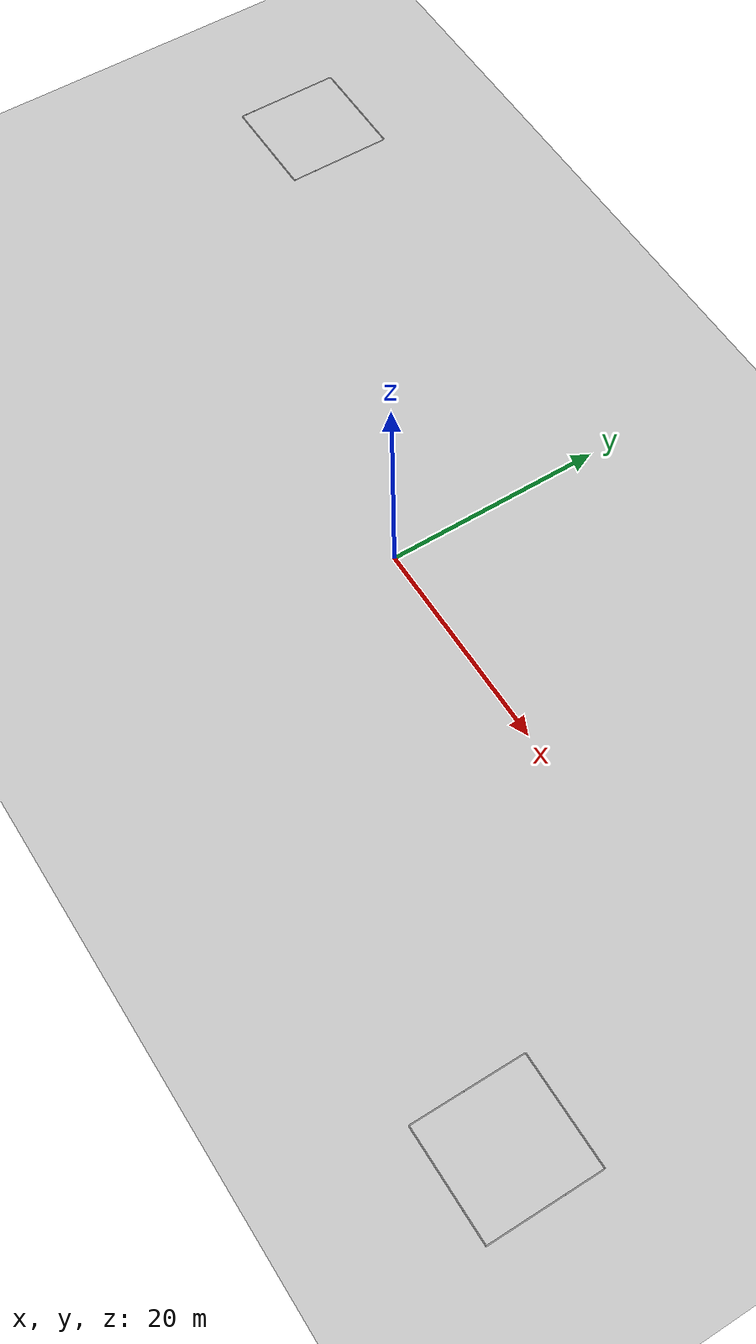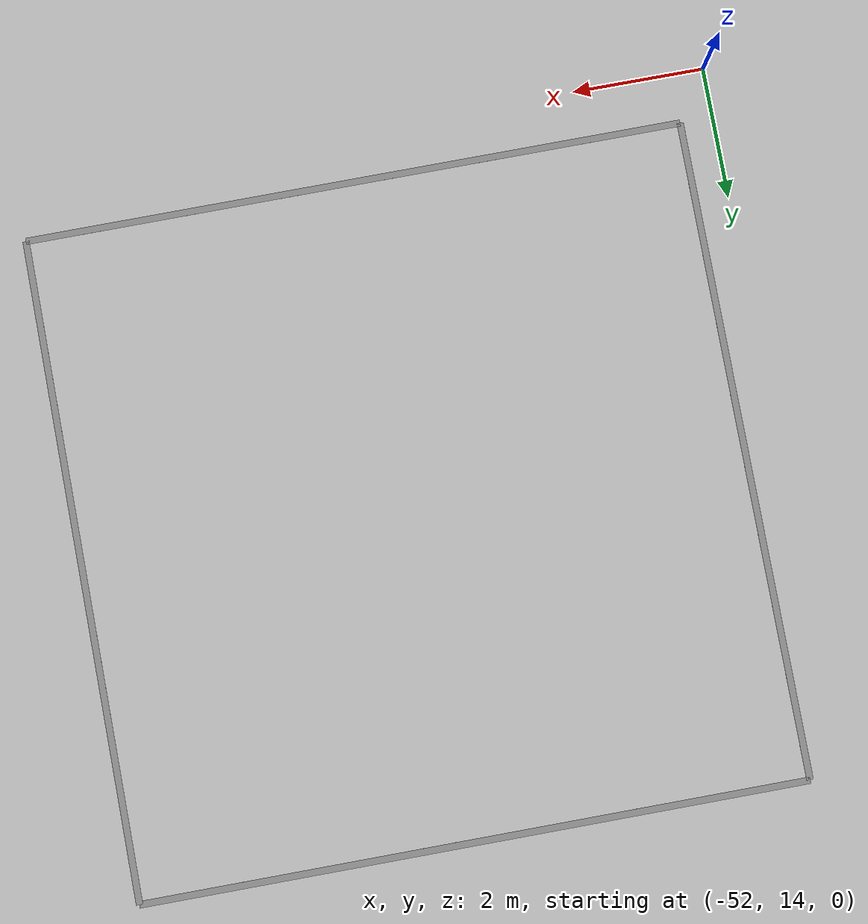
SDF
<sdf version="1.6">
 <world name="default">
  <light name="sun" type="directional">
   <pose>0 0 10 0 -0 0</pose>
   <diffuse>0.8 0.8 0.8 1</diffuse>
   <specular>0.1 0.1 0.1 1</specular>
   <attenuation>
    <range>1000</range>
    <constant>0.9</constant>
    <linear>0.01</linear>
    <quadratic>0.001</quadratic>
   </attenuation>
   <direction>-0.5 0.5 -1</direction>
  </light>
  <model name="ground_plane">
   <static>1</static>
   <link name="link">
    <collision name="collision">
     <geometry><plane><normal>0 0 1</normal><size>107.0 53.5</size></plane></geometry>
     <surface><friction><ode><mu>100</mu><mu2>50</mu2></ode></friction></surface>
    </collision>
    <visual name="visual">
     <cast_shadows>0</cast_shadows>
     <geometry><plane><normal>0 0 1</normal><size>107.0 53.5</size></plane></geometry>
     <material>
      <script>
       <uri>/home/savio/Documents/cmsvt_mbzirc/src/mbzirc_gazebo/worlds/materials/scripts</uri>
       <uri>/home/savio/Documents/cmsvt_mbzirc/src/mbzirc_gazebo/worlds/materials/textures</uri>
       <name>KentlandFarmGround/Image</name>
      </script>
     </material>
    </visual>
   </link>
  </model>
  <model name="start_area">
   <model name="designation_area">
    <link name="link_0">
     <pose>0 -5 0 0 0 0</pose>
     <inertial>
      <mass>1</mass>
      <inertia>
       <ixx>0.166667</ixx>
       <ixy>0</ixy>
       <ixz>0</ixz>
       <iyy>0.166667</iyy>
       <iyz>0</iyz>
       <izz>0.166667</izz>
      </inertia>
     </inertial>
     <visual name="ModelPreview_0::link_0::visual_1">
      <geometry><box><size>10 0.1 0.001</size></box></geometry>
      <material>
       <lighting>1</lighting>
       <script><uri>file://media/materials/scripts/gazebo.material</uri><name>Gazebo/Grey</name></script>
       <ambient>1 1 1 1</ambient>
       <diffuse>1 1 1 1</diffuse>
       <specular>0.01 0.01 0.01 1</specular>
       <emissive>0 0 0 1</emissive>
       <shader type="vertex"><normal_map>__default__</normal_map></shader>
      </material>
     </visual>
     <visual name="visual">
      <geometry><box><size>10 0.1 0.001</size></box></geometry>
      <material>
       <lighting>1</lighting>
       <script><uri>file://media/materials/scripts/gazebo.material</uri><name>Gazebo/Grey</name></script>
       <ambient>1 1 1 1</ambient>
       <diffuse>1 1 1 1</diffuse>
       <specular>0.01 0.01 0.01 1</specular>
       <emissive>0 0 0 1</emissive>
       <shader type="vertex"><normal_map>__default__</normal_map></shader>
      </material>
     </visual>
     <collision name="collision">
      <geometry><box><size>10 0.1 0.001</size></box></geometry>
      <surface>
       <friction>
        <ode><mu>1</mu><mu2>1</mu2><fdir1>0 0 0</fdir1><slip1>0</slip1><slip2>0</slip2></ode>
        <torsional>
         <coefficient>1</coefficient>
         <patch_radius>0</patch_radius>
         <surface_radius>0</surface_radius>
         <use_patch_radius>1</use_patch_radius>
         <ode><slip>0</slip></ode>
        </torsional>
       </friction>
       <bounce><restitution_coefficient>0</restitution_coefficient><threshold>1e+06</threshold></bounce>
       <contact>
        <collide_without_contact>0</collide_without_contact>
        <collide_without_contact_bitmask>1</collide_without_contact_bitmask>
        <collide_bitmask>1</collide_bitmask>
        <ode>
         <soft_cfm>0</soft_cfm>
         <soft_erp>0.2</soft_erp>
         <kp>1e+13</kp>
         <kd>1</kd>
         <max_vel>0.01</max_vel>
         <min_depth>0</min_depth>
        </ode>
        <bullet>
         <split_impulse>1</split_impulse>
         <split_impulse_penetration_threshold>-0.01</split_impulse_penetration_threshold>
         <soft_cfm>0</soft_cfm>
         <soft_erp>0.2</soft_erp>
         <kp>1e+13</kp>
         <kd>1</kd>
        </bullet>
       </contact>
      </surface>
     </collision>
    </link>
    <link name="link_0_clone">
     <pose>0 5 0 0 0 0</pose>
     <inertial>
      <mass>1</mass>
      <inertia>
       <ixx>0.166667</ixx>
       <ixy>0</ixy>
       <ixz>0</ixz>
       <iyy>0.166667</iyy>
       <iyz>0</iyz>
       <izz>0.166667</izz>
      </inertia>
     </inertial>
     <visual name="visual_1">
      <geometry><box><size>10 0.1 0.001</size></box></geometry>
      <material>
       <lighting>1</lighting>
       <script><uri>file://media/materials/scripts/gazebo.material</uri><name>Gazebo/Grey</name></script>
       <ambient>1 1 1 1</ambient>
       <diffuse>1 1 1 1</diffuse>
       <specular>0.01 0.01 0.01 1</specular>
       <emissive>0 0 0 1</emissive>
       <shader type="vertex"><normal_map>__default__</normal_map></shader>
      </material>
     </visual>
     <visual name="visual">
      <geometry><box><size>10 0.1 0.001</size></box></geometry>
      <material>
       <lighting>1</lighting>
       <script><uri>file://media/materials/scripts/gazebo.material</uri><name>Gazebo/Grey</name></script>
       <ambient>1 1 1 1</ambient>
       <diffuse>1 1 1 1</diffuse>
       <specular>0.01 0.01 0.01 1</specular>
       <emissive>0 0 0 1</emissive>
       <shader type="vertex"><normal_map>__default__</normal_map></shader>
      </material>
     </visual>
     <collision name="collision">
      <geometry><box><size>10 0.1 0.001</size></box></geometry>
      <surface>
       <friction>
        <ode><mu>1</mu><mu2>1</mu2><fdir1>0 0 0</fdir1><slip1>0</slip1><slip2>0</slip2></ode>
        <torsional>
         <coefficient>1</coefficient>
         <patch_radius>0</patch_radius>
         <surface_radius>0</surface_radius>
         <use_patch_radius>1</use_patch_radius>
         <ode><slip>0</slip></ode>
        </torsional>
       </friction>
       <bounce><restitution_coefficient>0</restitution_coefficient><threshold>1e+06</threshold></bounce>
       <contact>
        <collide_without_contact>0</collide_without_contact>
        <collide_without_contact_bitmask>1</collide_without_contact_bitmask>
        <collide_bitmask>1</collide_bitmask>
        <ode>
         <soft_cfm>0</soft_cfm>
         <soft_erp>0.2</soft_erp>
         <kp>1e+13</kp>
         <kd>1</kd>
         <max_vel>0.01</max_vel>
         <min_depth>0</min_depth>
        </ode>
        <bullet>
         <split_impulse>1</split_impulse>
         <split_impulse_penetration_threshold>-0.01</split_impulse_penetration_threshold>
         <soft_cfm>0</soft_cfm>
         <soft_erp>0.2</soft_erp>
         <kp>1e+13</kp>
         <kd>1</kd>
        </bullet>
       </contact>
      </surface>
     </collision>
    </link>
    <link name="link_0_clone_0">
     <pose>5 0 0 0 0 1.5708</pose>
     <inertial>
      <mass>1</mass>
      <inertia>
       <ixx>0.166667</ixx>
       <ixy>0</ixy>
       <ixz>0</ixz>
       <iyy>0.166667</iyy>
       <iyz>0</iyz>
       <izz>0.166667</izz>
      </inertia>
     </inertial>
     <visual name="visual_1">
      <geometry><box><size>10 0.1 0.001</size></box></geometry>
      <material>
       <lighting>1</lighting>
       <script><uri>file://media/materials/scripts/gazebo.material</uri><name>Gazebo/Grey</name></script>
       <ambient>1 1 1 1</ambient>
       <diffuse>1 1 1 1</diffuse>
       <specular>0.01 0.01 0.01 1</specular>
       <emissive>0 0 0 1</emissive>
       <shader type="vertex"><normal_map>__default__</normal_map></shader>
      </material>
     </visual>
     <visual name="visual">
      <geometry><box><size>10 0.1 0.001</size></box></geometry>
      <material>
       <lighting>1</lighting>
       <script><uri>file://media/materials/scripts/gazebo.material</uri><name>Gazebo/Grey</name></script>
       <ambient>1 1 1 1</ambient>
       <diffuse>1 1 1 1</diffuse>
       <specular>0.01 0.01 0.01 1</specular>
       <emissive>0 0 0 1</emissive>
       <shader type="vertex"><normal_map>__default__</normal_map></shader>
      </material>
     </visual>
     <collision name="collision">
      <geometry><box><size>10 0.1 0.001</size></box></geometry>
      <surface>
       <friction>
        <ode><mu>1</mu><mu2>1</mu2><fdir1>0 0 0</fdir1><slip1>0</slip1><slip2>0</slip2></ode>
        <torsional>
         <coefficient>1</coefficient>
         <patch_radius>0</patch_radius>
         <surface_radius>0</surface_radius>
         <use_patch_radius>1</use_patch_radius>
         <ode><slip>0</slip></ode>
        </torsional>
       </friction>
       <bounce><restitution_coefficient>0</restitution_coefficient><threshold>1e+06</threshold></bounce>
       <contact>
        <collide_without_contact>0</collide_without_contact>
        <collide_without_contact_bitmask>1</collide_without_contact_bitmask>
        <collide_bitmask>1</collide_bitmask>
        <ode>
         <soft_cfm>0</soft_cfm>
         <soft_erp>0.2</soft_erp>
         <kp>1e+13</kp>
         <kd>1</kd>
         <max_vel>0.01</max_vel>
         <min_depth>0</min_depth>
        </ode>
        <bullet>
         <split_impulse>1</split_impulse>
         <split_impulse_penetration_threshold>-0.01</split_impulse_penetration_threshold>
         <soft_cfm>0</soft_cfm>
         <soft_erp>0.2</soft_erp>
         <kp>1e+13</kp>
         <kd>1</kd>
        </bullet>
       </contact>
      </surface>
     </collision>
    </link>
    <link name="link_0_clone_0_clone">
     <pose>-5 0 0 0 0 1.5708</pose>
     <inertial>
      <mass>1</mass>
      <inertia>
       <ixx>0.166667</ixx>
       <ixy>0</ixy>
       <ixz>0</ixz>
       <iyy>0.166667</iyy>
       <iyz>0</iyz>
       <izz>0.166667</izz>
      </inertia>
     </inertial>
     <visual name="visual_1">
      <geometry><box><size>10 0.1 0.001</size></box></geometry>
      <material>
       <lighting>1</lighting>
       <script><uri>file://media/materials/scripts/gazebo.material</uri><name>Gazebo/Grey</name></script>
       <ambient>1 1 1 1</ambient>
       <diffuse>1 1 1 1</diffuse>
       <specular>0.01 0.01 0.01 1</specular>
       <emissive>0 0 0 1</emissive>
       <shader type="vertex"><normal_map>__default__</normal_map></shader>
      </material>
     </visual>
     <visual name="visual">
      <geometry><box><size>10 0.1 0.001</size></box></geometry>
      <material>
       <lighting>1</lighting>
       <script><uri>file://media/materials/scripts/gazebo.material</uri><name>Gazebo/Grey</name></script>
       <ambient>1 1 1 1</ambient>
       <diffuse>1 1 1 1</diffuse>
       <specular>0.01 0.01 0.01 1</specular>
       <emissive>0 0 0 1</emissive>
       <shader type="vertex"><normal_map>__default__</normal_map></shader>
      </material>
     </visual>
     <collision name="collision">
      <geometry><box><size>10 0.1 0.001</size></box></geometry>
      <surface>
       <friction>
        <ode><mu>1</mu><mu2>1</mu2><fdir1>0 0 0</fdir1><slip1>0</slip1><slip2>0</slip2></ode>
        <torsional>
         <coefficient>1</coefficient>
         <patch_radius>0</patch_radius>
         <surface_radius>0</surface_radius>
         <use_patch_radius>1</use_patch_radius>
         <ode><slip>0</slip></ode>
        </torsional>
       </friction>
       <bounce><restitution_coefficient>0</restitution_coefficient><threshold>1e+06</threshold></bounce>
       <contact>
        <collide_without_contact>0</collide_without_contact>
        <collide_without_contact_bitmask>1</collide_without_contact_bitmask>
        <collide_bitmask>1</collide_bitmask>
        <ode>
         <soft_cfm>0</soft_cfm>
         <soft_erp>0.2</soft_erp>
         <kp>1e+13</kp>
         <kd>1</kd>
         <max_vel>0.01</max_vel>
         <min_depth>0</min_depth>
        </ode>
        <bullet>
         <split_impulse>1</split_impulse>
         <split_impulse_penetration_threshold>-0.01</split_impulse_penetration_threshold>
         <soft_cfm>0</soft_cfm>
         <soft_erp>0.2</soft_erp>
         <kp>1e+13</kp>
         <kd>1</kd>
        </bullet>
       </contact>
      </surface>
     </collision>
    </link>
    <static>1</static>
   </model>
   <pose>46.5 -19.75 0 0 0 0</pose>
  </model>
  <model name="drop_area">
   <model name="designation_area">
    <link name="link_0">
     <pose>0 -5 0 0 0 0</pose>
     <inertial>
      <mass>1</mass>
      <inertia>
       <ixx>0.166667</ixx>
       <ixy>0</ixy>
       <ixz>0</ixz>
       <iyy>0.166667</iyy>
       <iyz>0</iyz>
       <izz>0.166667</izz>
      </inertia>
     </inertial>
     <visual name="ModelPreview_0::link_0::visual_1">
      <geometry><box><size>10 0.1 0.001</size></box></geometry>
      <material>
       <lighting>1</lighting>
       <script><uri>file://media/materials/scripts/gazebo.material</uri><name>Gazebo/Grey</name></script>
       <ambient>1 1 1 1</ambient>
       <diffuse>1 1 1 1</diffuse>
       <specular>0.01 0.01 0.01 1</specular>
       <emissive>0 0 0 1</emissive>
       <shader type="vertex"><normal_map>__default__</normal_map></shader>
      </material>
     </visual>
     <visual name="visual">
      <geometry><box><size>10 0.1 0.001</size></box></geometry>
      <material>
       <lighting>1</lighting>
       <script><uri>file://media/materials/scripts/gazebo.material</uri><name>Gazebo/Grey</name></script>
       <ambient>1 1 1 1</ambient>
       <diffuse>1 1 1 1</diffuse>
       <specular>0.01 0.01 0.01 1</specular>
       <emissive>0 0 0 1</emissive>
       <shader type="vertex"><normal_map>__default__</normal_map></shader>
      </material>
     </visual>
     <collision name="collision">
      <geometry><box><size>10 0.1 0.001</size></box></geometry>
      <surface>
       <friction>
        <ode><mu>1</mu><mu2>1</mu2><fdir1>0 0 0</fdir1><slip1>0</slip1><slip2>0</slip2></ode>
        <torsional>
         <coefficient>1</coefficient>
         <patch_radius>0</patch_radius>
         <surface_radius>0</surface_radius>
         <use_patch_radius>1</use_patch_radius>
         <ode><slip>0</slip></ode>
        </torsional>
       </friction>
       <bounce><restitution_coefficient>0</restitution_coefficient><threshold>1e+06</threshold></bounce>
       <contact>
        <collide_without_contact>0</collide_without_contact>
        <collide_without_contact_bitmask>1</collide_without_contact_bitmask>
        <collide_bitmask>1</collide_bitmask>
        <ode>
         <soft_cfm>0</soft_cfm>
         <soft_erp>0.2</soft_erp>
         <kp>1e+13</kp>
         <kd>1</kd>
         <max_vel>0.01</max_vel>
         <min_depth>0</min_depth>
        </ode>
        <bullet>
         <split_impulse>1</split_impulse>
         <split_impulse_penetration_threshold>-0.01</split_impulse_penetration_threshold>
         <soft_cfm>0</soft_cfm>
         <soft_erp>0.2</soft_erp>
         <kp>1e+13</kp>
         <kd>1</kd>
        </bullet>
       </contact>
      </surface>
     </collision>
    </link>
    <link name="link_0_clone">
     <pose>0 5 0 0 0 0</pose>
     <inertial>
      <mass>1</mass>
      <inertia>
       <ixx>0.166667</ixx>
       <ixy>0</ixy>
       <ixz>0</ixz>
       <iyy>0.166667</iyy>
       <iyz>0</iyz>
       <izz>0.166667</izz>
      </inertia>
     </inertial>
     <visual name="visual_1">
      <geometry><box><size>10 0.1 0.001</size></box></geometry>
      <material>
       <lighting>1</lighting>
       <script><uri>file://media/materials/scripts/gazebo.material</uri><name>Gazebo/Grey</name></script>
       <ambient>1 1 1 1</ambient>
       <diffuse>1 1 1 1</diffuse>
       <specular>0.01 0.01 0.01 1</specular>
       <emissive>0 0 0 1</emissive>
       <shader type="vertex"><normal_map>__default__</normal_map></shader>
      </material>
     </visual>
     <visual name="visual">
      <geometry><box><size>10 0.1 0.001</size></box></geometry>
      <material>
       <lighting>1</lighting>
       <script><uri>file://media/materials/scripts/gazebo.material</uri><name>Gazebo/Grey</name></script>
       <ambient>1 1 1 1</ambient>
       <diffuse>1 1 1 1</diffuse>
       <specular>0.01 0.01 0.01 1</specular>
       <emissive>0 0 0 1</emissive>
       <shader type="vertex"><normal_map>__default__</normal_map></shader>
      </material>
     </visual>
     <collision name="collision">
      <geometry><box><size>10 0.1 0.001</size></box></geometry>
      <surface>
       <friction>
        <ode><mu>1</mu><mu2>1</mu2><fdir1>0 0 0</fdir1><slip1>0</slip1><slip2>0</slip2></ode>
        <torsional>
         <coefficient>1</coefficient>
         <patch_radius>0</patch_radius>
         <surface_radius>0</surface_radius>
         <use_patch_radius>1</use_patch_radius>
         <ode><slip>0</slip></ode>
        </torsional>
       </friction>
       <bounce><restitution_coefficient>0</restitution_coefficient><threshold>1e+06</threshold></bounce>
       <contact>
        <collide_without_contact>0</collide_without_contact>
        <collide_without_contact_bitmask>1</collide_without_contact_bitmask>
        <collide_bitmask>1</collide_bitmask>
        <ode>
         <soft_cfm>0</soft_cfm>
         <soft_erp>0.2</soft_erp>
         <kp>1e+13</kp>
         <kd>1</kd>
         <max_vel>0.01</max_vel>
         <min_depth>0</min_depth>
        </ode>
        <bullet>
         <split_impulse>1</split_impulse>
         <split_impulse_penetration_threshold>-0.01</split_impulse_penetration_threshold>
         <soft_cfm>0</soft_cfm>
         <soft_erp>0.2</soft_erp>
         <kp>1e+13</kp>
         <kd>1</kd>
        </bullet>
       </contact>
      </surface>
     </collision>
    </link>
    <link name="link_0_clone_0">
     <pose>5 0 0 0 0 1.5708</pose>
     <inertial>
      <mass>1</mass>
      <inertia>
       <ixx>0.166667</ixx>
       <ixy>0</ixy>
       <ixz>0</ixz>
       <iyy>0.166667</iyy>
       <iyz>0</iyz>
       <izz>0.166667</izz>
      </inertia>
     </inertial>
     <visual name="visual_1">
      <geometry><box><size>10 0.1 0.001</size></box></geometry>
      <material>
       <lighting>1</lighting>
       <script><uri>file://media/materials/scripts/gazebo.material</uri><name>Gazebo/Grey</name></script>
       <ambient>1 1 1 1</ambient>
       <diffuse>1 1 1 1</diffuse>
       <specular>0.01 0.01 0.01 1</specular>
       <emissive>0 0 0 1</emissive>
       <shader type="vertex"><normal_map>__default__</normal_map></shader>
      </material>
     </visual>
     <visual name="visual">
      <geometry><box><size>10 0.1 0.001</size></box></geometry>
      <material>
       <lighting>1</lighting>
       <script><uri>file://media/materials/scripts/gazebo.material</uri><name>Gazebo/Grey</name></script>
       <ambient>1 1 1 1</ambient>
       <diffuse>1 1 1 1</diffuse>
       <specular>0.01 0.01 0.01 1</specular>
       <emissive>0 0 0 1</emissive>
       <shader type="vertex"><normal_map>__default__</normal_map></shader>
      </material>
     </visual>
     <collision name="collision">
      <geometry><box><size>10 0.1 0.001</size></box></geometry>
      <surface>
       <friction>
        <ode><mu>1</mu><mu2>1</mu2><fdir1>0 0 0</fdir1><slip1>0</slip1><slip2>0</slip2></ode>
        <torsional>
         <coefficient>1</coefficient>
         <patch_radius>0</patch_radius>
         <surface_radius>0</surface_radius>
         <use_patch_radius>1</use_patch_radius>
         <ode><slip>0</slip></ode>
        </torsional>
       </friction>
       <bounce><restitution_coefficient>0</restitution_coefficient><threshold>1e+06</threshold></bounce>
       <contact>
        <collide_without_contact>0</collide_without_contact>
        <collide_without_contact_bitmask>1</collide_without_contact_bitmask>
        <collide_bitmask>1</collide_bitmask>
        <ode>
         <soft_cfm>0</soft_cfm>
         <soft_erp>0.2</soft_erp>
         <kp>1e+13</kp>
         <kd>1</kd>
         <max_vel>0.01</max_vel>
         <min_depth>0</min_depth>
        </ode>
        <bullet>
         <split_impulse>1</split_impulse>
         <split_impulse_penetration_threshold>-0.01</split_impulse_penetration_threshold>
         <soft_cfm>0</soft_cfm>
         <soft_erp>0.2</soft_erp>
         <kp>1e+13</kp>
         <kd>1</kd>
        </bullet>
       </contact>
      </surface>
     </collision>
    </link>
    <link name="link_0_clone_0_clone">
     <pose>-5 0 0 0 0 1.5708</pose>
     <inertial>
      <mass>1</mass>
      <inertia>
       <ixx>0.166667</ixx>
       <ixy>0</ixy>
       <ixz>0</ixz>
       <iyy>0.166667</iyy>
       <iyz>0</iyz>
       <izz>0.166667</izz>
      </inertia>
     </inertial>
     <visual name="visual_1">
      <geometry><box><size>10 0.1 0.001</size></box></geometry>
      <material>
       <lighting>1</lighting>
       <script><uri>file://media/materials/scripts/gazebo.material</uri><name>Gazebo/Grey</name></script>
       <ambient>1 1 1 1</ambient>
       <diffuse>1 1 1 1</diffuse>
       <specular>0.01 0.01 0.01 1</specular>
       <emissive>0 0 0 1</emissive>
       <shader type="vertex"><normal_map>__default__</normal_map></shader>
      </material>
     </visual>
     <visual name="visual">
      <geometry><box><size>10 0.1 0.001</size></box></geometry>
      <material>
       <lighting>1</lighting>
       <script><uri>file://media/materials/scripts/gazebo.material</uri><name>Gazebo/Grey</name></script>
       <ambient>1 1 1 1</ambient>
       <diffuse>1 1 1 1</diffuse>
       <specular>0.01 0.01 0.01 1</specular>
       <emissive>0 0 0 1</emissive>
       <shader type="vertex"><normal_map>__default__</normal_map></shader>
      </material>
     </visual>
     <collision name="collision">
      <geometry><box><size>10 0.1 0.001</size></box></geometry>
      <surface>
       <friction>
        <ode><mu>1</mu><mu2>1</mu2><fdir1>0 0 0</fdir1><slip1>0</slip1><slip2>0</slip2></ode>
        <torsional>
         <coefficient>1</coefficient>
         <patch_radius>0</patch_radius>
         <surface_radius>0</surface_radius>
         <use_patch_radius>1</use_patch_radius>
         <ode><slip>0</slip></ode>
        </torsional>
       </friction>
       <bounce><restitution_coefficient>0</restitution_coefficient><threshold>1e+06</threshold></bounce>
       <contact>
        <collide_without_contact>0</collide_without_contact>
        <collide_without_contact_bitmask>1</collide_without_contact_bitmask>
        <collide_bitmask>1</collide_bitmask>
        <ode>
         <soft_cfm>0</soft_cfm>
         <soft_erp>0.2</soft_erp>
         <kp>1e+13</kp>
         <kd>1</kd>
         <max_vel>0.01</max_vel>
         <min_depth>0</min_depth>
        </ode>
        <bullet>
         <split_impulse>1</split_impulse>
         <split_impulse_penetration_threshold>-0.01</split_impulse_penetration_threshold>
         <soft_cfm>0</soft_cfm>
         <soft_erp>0.2</soft_erp>
         <kp>1e+13</kp>
         <kd>1</kd>
        </bullet>
       </contact>
      </surface>
     </collision>
    </link>
    <static>1</static>
   </model>
   <pose>-46.5 19.75 0 0 0 0</pose>
  </model>
  <gravity>0 0 -9.8</gravity>
  <magnetic_field>6e-06 2.3e-05 -4.2e-05</magnetic_field>
  <atmosphere type="adiabatic"/>
  <physics default="0" name="default_physics" type="ode">
   <max_step_size>0.001</max_step_size>
   <real_time_factor>1</real_time_factor>
   <real_time_update_rate>1000</real_time_update_rate>
  </physics>
  <scene><ambient>0.4 0.4 0.4 1</ambient><background>0.7 0.7 0.7 1</background><shadows>1</shadows></scene>
  <spherical_coordinates>
   <surface_model>EARTH_WGS84</surface_model>
   <latitude_deg>0</latitude_deg>
   <longitude_deg>0</longitude_deg>
   <elevation>0</elevation>
   <heading_deg>0</heading_deg>
  </spherical_coordinates>
 </world>
</sdf>
